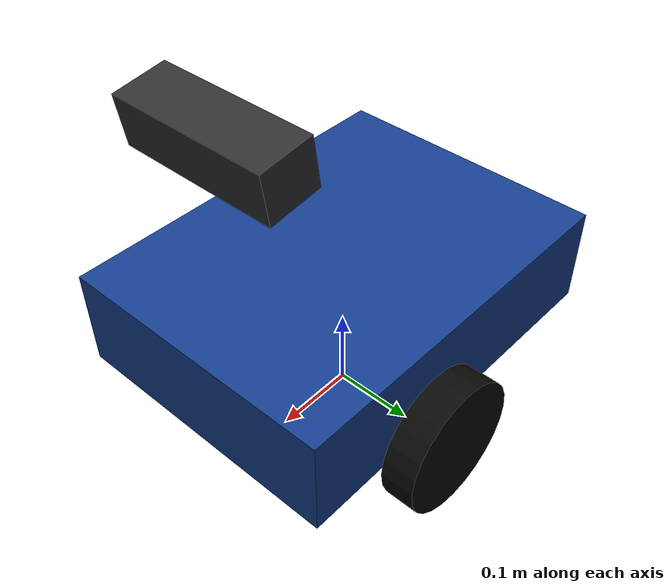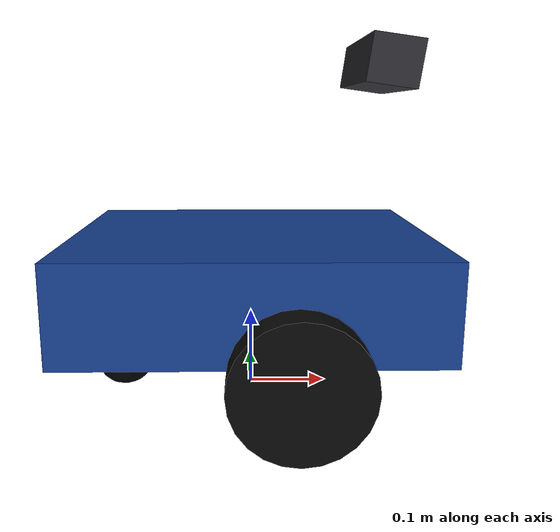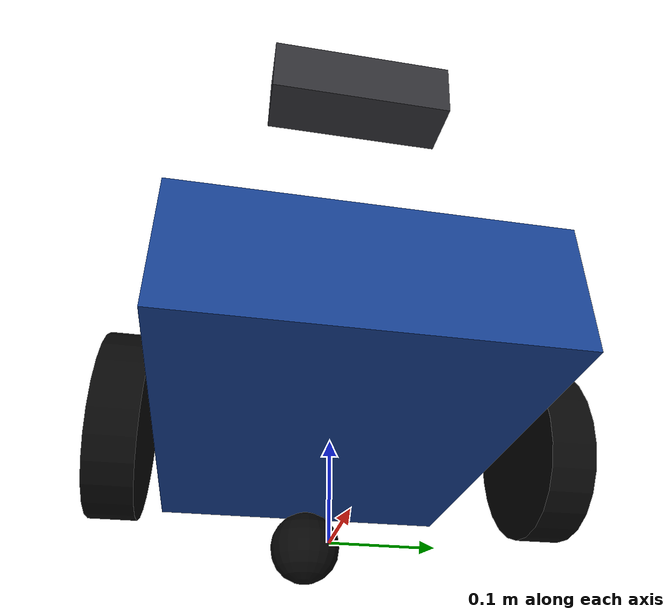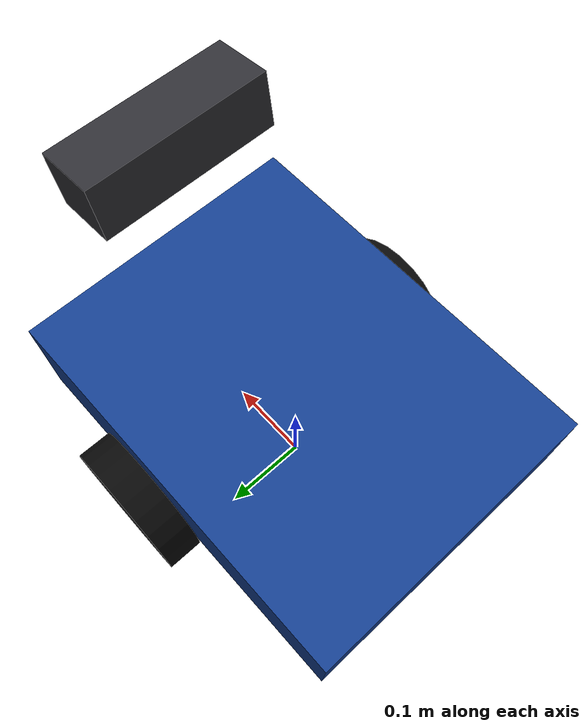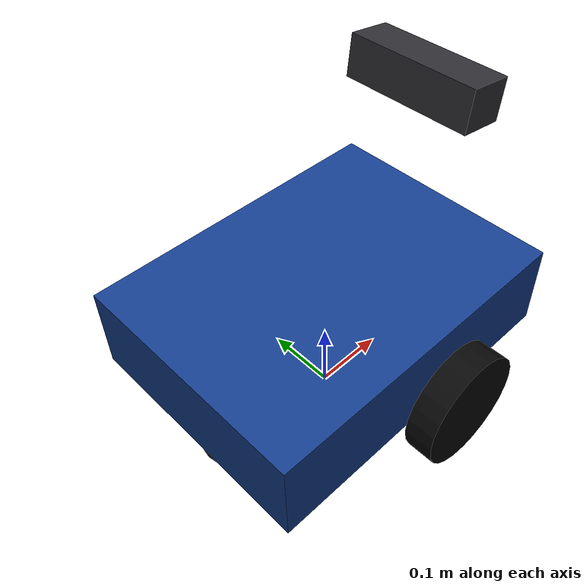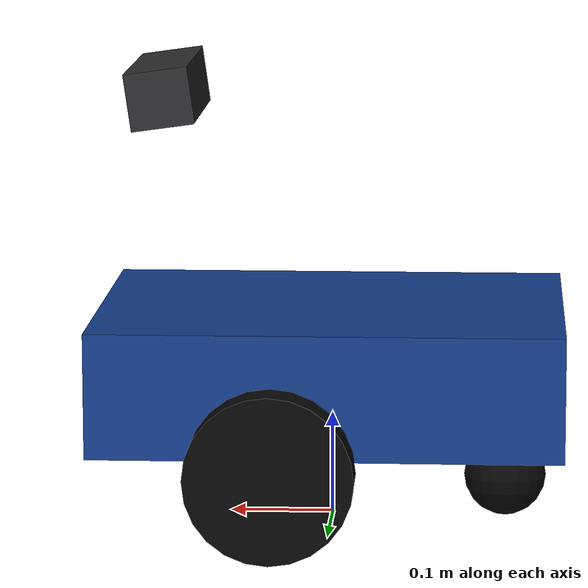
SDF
<?xml version="1.0"?>
<sdf version="1.9">
  <model name="stereo_rover">
    <self_collide>false</self_collide>
    <allow_auto_disable>false</allow_auto_disable>

    <link name="base_link">
      <pose>0 0 0 0 0 0</pose>
      <inertial>
        <pose>0 0 0.15 0 0 0</pose>
        <mass>12.0</mass>
        <inertia>
          <ixx>0.130</ixx><ixy>0</ixy><ixz>0</ixz>
          <iyy>0.240</iyy><iyz>0</iyz><izz>0.310</izz>
        </inertia>
      </inertial>
      <visual name="chassis_visual">
        <pose>0 0 0.15 0 0 0</pose>
        <geometry><box><size>0.45 0.34 0.12</size></box></geometry>
        <material>
          <ambient>0.08 0.24 0.55 1</ambient>
          <diffuse>0.08 0.24 0.55 1</diffuse>
          <specular>0.2 0.2 0.2 1</specular>
        </material>
      </visual>
      <collision name="chassis_collision">
        <pose>0 0 0.15 0 0 0</pose>
        <geometry><box><size>0.45 0.34 0.12</size></box></geometry>
      </collision>
    </link>

    <link name="left_wheel_link">
      <pose>0.05 0.19 0.08 1.57079632679 0 0</pose>
      <inertial>
        <mass>0.6</mass>
        <inertia>
          <ixx>0.0021</ixx><ixy>0</ixy><ixz>0</ixz>
          <iyy>0.0038</iyy><iyz>0</iyz><izz>0.0021</izz>
        </inertia>
      </inertial>
      <visual name="visual">
        <geometry><cylinder><radius>0.08</radius><length>0.04</length></cylinder></geometry>
        <material><ambient>0.03 0.03 0.03 1</ambient><diffuse>0.03 0.03 0.03 1</diffuse></material>
      </visual>
      <collision name="collision">
        <geometry><cylinder><radius>0.08</radius><length>0.04</length></cylinder></geometry>
        <surface>
          <friction><ode><mu>1.2</mu><mu2>1.2</mu2></ode></friction>
        </surface>
      </collision>
    </link>

    <joint name="left_wheel_joint" type="revolute">
      <parent>base_link</parent>
      <child>left_wheel_link</child>
      <axis>
        <xyz expressed_in="__model__">0 1 0</xyz>
        <limit><lower>-1e16</lower><upper>1e16</upper></limit>
        <dynamics><damping>0.02</damping></dynamics>
      </axis>
    </joint>

    <link name="right_wheel_link">
      <pose>0.05 -0.19 0.08 1.57079632679 0 0</pose>
      <inertial>
        <mass>0.6</mass>
        <inertia>
          <ixx>0.0021</ixx><ixy>0</ixy><ixz>0</ixz>
          <iyy>0.0038</iyy><iyz>0</iyz><izz>0.0021</izz>
        </inertia>
      </inertial>
      <visual name="visual">
        <geometry><cylinder><radius>0.08</radius><length>0.04</length></cylinder></geometry>
        <material><ambient>0.03 0.03 0.03 1</ambient><diffuse>0.03 0.03 0.03 1</diffuse></material>
      </visual>
      <collision name="collision">
        <geometry><cylinder><radius>0.08</radius><length>0.04</length></cylinder></geometry>
        <surface>
          <friction><ode><mu>1.2</mu><mu2>1.2</mu2></ode></friction>
        </surface>
      </collision>
    </link>

    <joint name="right_wheel_joint" type="revolute">
      <parent>base_link</parent>
      <child>right_wheel_link</child>
      <axis>
        <xyz expressed_in="__model__">0 1 0</xyz>
        <limit><lower>-1e16</lower><upper>1e16</upper></limit>
        <dynamics><damping>0.02</damping></dynamics>
      </axis>
    </joint>

    <link name="rear_caster_link">
      <pose>-0.17 0 0.04 0 0 0</pose>
      <inertial>
        <mass>0.1</mass>
        <inertia><ixx>0.000064</ixx><ixy>0</ixy><ixz>0</ixz><iyy>0.000064</iyy><iyz>0</iyz><izz>0.000064</izz></inertia>
      </inertial>
      <visual name="visual">
        <geometry><sphere><radius>0.04</radius></sphere></geometry>
        <material><ambient>0.03 0.03 0.03 1</ambient><diffuse>0.03 0.03 0.03 1</diffuse></material>
      </visual>
      <collision name="collision">
        <geometry><sphere><radius>0.04</radius></sphere></geometry>
        <surface><friction><ode><mu>0.05</mu><mu2>0.05</mu2></ode></friction></surface>
      </collision>
    </link>
    <joint name="rear_caster_joint" type="fixed">
      <parent>base_link</parent><child>rear_caster_link</child>
    </joint>

    <link name="camera_rig_link">
      <pose>0.16 0 0.42 0 0.1396263402 0</pose>
      <inertial>
        <mass>0.25</mass>
        <inertia><ixx>0.0008</ixx><ixy>0</ixy><ixz>0</ixz><iyy>0.0008</iyy><iyz>0</iyz><izz>0.0014</izz></inertia>
      </inertial>
      <visual name="rig_visual">
        <geometry><box><size>0.06 0.18 0.055</size></box></geometry>
        <material><ambient>0.18 0.18 0.20 1</ambient><diffuse>0.18 0.18 0.20 1</diffuse></material>
      </visual>

      <sensor name="left_camera" type="camera">
        <pose>0 0.06 0 0 0 0</pose>
        <always_on>true</always_on>
        <update_rate>30</update_rate>
        <visualize>false</visualize>
        <topic>/stereo/left/image_raw</topic>
        <gz_frame_id>stereo_left_optical_frame</gz_frame_id>
        <camera name="left">
          <camera_info_topic>/stereo/left/camera_info</camera_info_topic>
          <optical_frame_id>stereo_left_optical_frame</optical_frame_id>
          <horizontal_fov>1.57079632679</horizontal_fov>
          <image><width>640</width><height>480</height><format>L8</format></image>
          <clip><near>0.15</near><far>8.0</far></clip>
          <intrinsics><fx>320</fx><fy>320</fy><cx>319.5</cx><cy>239.5</cy><s>0</s></intrinsics>
          <projection><p_fx>320</p_fx><p_fy>320</p_fy><p_cx>319.5</p_cx><p_cy>239.5</p_cy><tx>0</tx><ty>0</ty></projection>
          <distortion><k1>0</k1><k2>0</k2><k3>0</k3><p1>0</p1><p2>0</p2><center>0.5 0.5</center></distortion>
          <noise><type>gaussian</type><mean>0</mean><stddev>0.003</stddev></noise>
        </camera>
      </sensor>

      <sensor name="right_camera" type="camera">
        <pose>0 -0.06 0 0 0 0</pose>
        <always_on>true</always_on>
        <update_rate>30</update_rate>
        <visualize>false</visualize>
        <topic>/stereo/right/image_raw</topic>
        <gz_frame_id>stereo_right_optical_frame</gz_frame_id>
        <camera name="right">
          <camera_info_topic>/stereo/right/camera_info</camera_info_topic>
          <optical_frame_id>stereo_right_optical_frame</optical_frame_id>
          <horizontal_fov>1.57079632679</horizontal_fov>
          <image><width>640</width><height>480</height><format>L8</format></image>
          <clip><near>0.15</near><far>8.0</far></clip>
          <intrinsics><fx>320</fx><fy>320</fy><cx>319.5</cx><cy>239.5</cy><s>0</s></intrinsics>
          <projection><p_fx>320</p_fx><p_fy>320</p_fy><p_cx>319.5</p_cx><p_cy>239.5</p_cy><tx>-38.4</tx><ty>0</ty></projection>
          <distortion><k1>0</k1><k2>0</k2><k3>0</k3><p1>0</p1><p2>0</p2><center>0.5 0.5</center></distortion>
          <noise><type>gaussian</type><mean>0</mean><stddev>0.003</stddev></noise>
        </camera>
      </sensor>
    </link>

    <joint name="camera_rig_joint" type="fixed">
      <parent>base_link</parent><child>camera_rig_link</child>
    </joint>

    <plugin filename="ignition-gazebo-diff-drive-system" name="ignition::gazebo::systems::DiffDrive">
      <left_joint>left_wheel_joint</left_joint>
      <right_joint>right_wheel_joint</right_joint>
      <wheel_separation>0.38</wheel_separation>
      <wheel_radius>0.08</wheel_radius>
      <topic>/model/stereo_rover/cmd_vel</topic>
      <max_linear_acceleration>0.8</max_linear_acceleration>
      <max_angular_acceleration>2.0</max_angular_acceleration>
    </plugin>

    <plugin filename="ignition-gazebo-odometry-publisher-system" name="ignition::gazebo::systems::OdometryPublisher">
      <dimensions>2</dimensions>
      <odom_frame>world</odom_frame>
      <robot_base_frame>base_link</robot_base_frame>
      <odom_topic>/ground_truth/odom</odom_topic>
      <tf_topic>/ground_truth/tf_not_bridged</tf_topic>
      <odom_publish_frequency>50</odom_publish_frequency>
    </plugin>

    <plugin filename="ignition-gazebo-joint-state-publisher-system" name="ignition::gazebo::systems::JointStatePublisher">
      <topic>/joint_states</topic>
      <joint_name>left_wheel_joint</joint_name>
      <joint_name>right_wheel_joint</joint_name>
    </plugin>
  </model>
</sdf>
